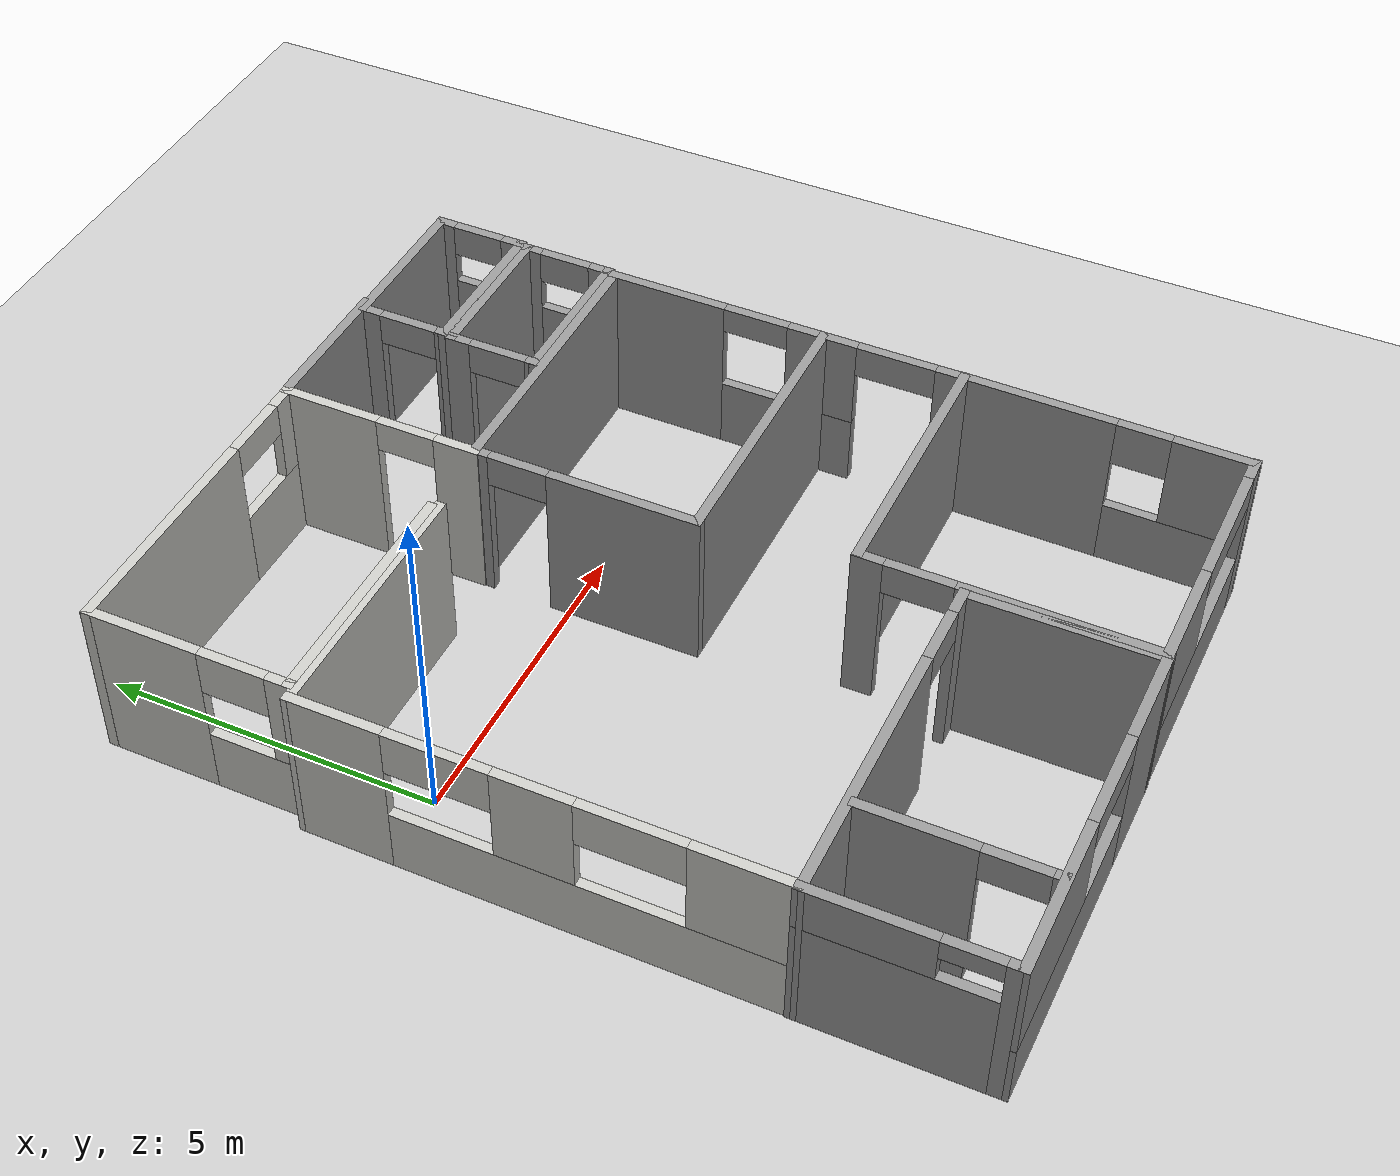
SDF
<sdf version="1.6">
 <world name="default">
  <light name="sun" type="directional">
   <pose>0 0 10 0 -0 0</pose>
   <diffuse>0.8 0.8 0.8 1</diffuse>
   <specular>0.2 0.2 0.2 1</specular>
   <attenuation>
    <range>1000</range>
    <constant>0.9</constant>
    <linear>0.01</linear>
    <quadratic>0.001</quadratic>
   </attenuation>
   <direction>-0.5 0.1 -0.9</direction>
  </light>
  <model name="ground_plane">
   <static>1</static>
   <link name="link">
    <collision name="collision">
     <geometry><plane><normal>0 0 1</normal><size>100 100</size></plane></geometry>
     <surface>
      <contact><collide_bitmask>65535</collide_bitmask></contact>
      <friction><ode><mu>100</mu><mu2>50</mu2></ode></friction>
     </surface>
    </collision>
    <visual name="visual">
     <cast_shadows>0</cast_shadows>
     <geometry><plane><normal>0 0 1</normal><size>100 100</size></plane></geometry>
     <material>
      <script><uri>file://media/materials/scripts/gazebo.material</uri><name>Gazebo/Grey</name></script>
     </material>
    </visual>
   </link>
  </model>
  <gravity>0 0 -9.8</gravity>
  <magnetic_field>6e-06 2.3e-05 -4.2e-05</magnetic_field>
  <atmosphere type="adiabatic"/>
  <physics name="default_physics" default="0" type="ode">
   <max_step_size>0.001</max_step_size>
   <real_time_factor>1</real_time_factor>
   <real_time_update_rate>1000</real_time_update_rate>
  </physics>
  <scene><ambient>0.4 0.4 0.4 1</ambient><background>0.7 0.7 0.7 1</background><shadows>1</shadows></scene>
  <audio><device>default</device></audio>
  <spherical_coordinates>
   <surface_model>EARTH_WGS84</surface_model>
   <latitude_deg>0</latitude_deg>
   <longitude_deg>0</longitude_deg>
   <elevation>0</elevation>
   <heading_deg>0</heading_deg>
  </spherical_coordinates>
  <model name="room1">
   <pose>6.17427 -1.26115 0 0 -0 0</pose>
   <link name="Wall_0">
    <collision name="Wall_0_Collision">
     <geometry><box><size>4.5 0.15 2.5</size></box></geometry>
     <pose>0 0 1.25 0 -0 0</pose>
    </collision>
    <visual name="Wall_0_Visual">
     <pose>0 0 1.25 0 -0 0</pose>
     <geometry><box><size>4.5 0.15 2.5</size></box></geometry>
     <material>
      <script><uri>file://media/materials/scripts/gazebo.material</uri><name>Gazebo/Grey</name></script>
      <ambient>1 1 1 1</ambient>
     </material>
     <meta><layer>0</layer></meta>
    </visual>
    <pose>0 2.675 0 0 -0 0</pose>
   </link>
   <link name="Wall_3">
    <pose>2.175 0 0 0 -0 -1.5708</pose>
    <visual name="Wall_3_Visual_0">
     <pose>-1.80904 0 1.25 0 -0 0</pose>
     <geometry><box><size>1.88193 0.15 2.5</size></box></geometry>
     <material>
      <script><uri>file://media/materials/scripts/gazebo.material</uri><name>Gazebo/Grey</name></script>
      <ambient>1 1 1 1</ambient>
     </material>
     <meta><layer>0</layer></meta>
    </visual>
    <collision name="Wall_3_Collision_0">
     <geometry><box><size>1.88193 0.15 2.5</size></box></geometry>
     <pose>-1.80904 0 1.25 0 -0 0</pose>
    </collision>
    <visual name="Wall_3_Visual_1">
     <pose>2.58157 0 1.25 0 -0 0</pose>
     <geometry><box><size>0.336859 0.15 2.5</size></box></geometry>
     <material>
      <script><uri>file://media/materials/scripts/gazebo.material</uri><name>Gazebo/Grey</name></script>
      <ambient>1 1 1 1</ambient>
     </material>
     <meta><layer>0</layer></meta>
    </visual>
    <collision name="Wall_3_Collision_1">
     <geometry><box><size>0.336859 0.15 2.5</size></box></geometry>
     <pose>2.58157 0 1.25 0 -0 0</pose>
    </collision>
    <visual name="Wall_3_Visual_2">
     <pose>0.172533 0 0.55 0 -0 0</pose>
     <geometry><box><size>2.08122 0.15 1.1</size></box></geometry>
     <material>
      <script><uri>file://media/materials/scripts/gazebo.material</uri><name>Gazebo/Grey</name></script>
      <ambient>1 1 1 1</ambient>
     </material>
     <meta><layer>0</layer></meta>
    </visual>
    <collision name="Wall_3_Collision_2">
     <geometry><box><size>2.08122 0.15 1.1</size></box></geometry>
     <pose>0.172533 0 0.55 0 -0 0</pose>
    </collision>
    <visual name="Wall_3_Visual_3">
     <pose>0.672533 0 1.8 0 -0 0</pose>
     <geometry><box><size>1.08122 0.15 1.4</size></box></geometry>
     <material>
      <script><uri>file://media/materials/scripts/gazebo.material</uri><name>Gazebo/Grey</name></script>
      <ambient>1 1 1 1</ambient>
     </material>
     <meta><layer>0</layer></meta>
    </visual>
    <collision name="Wall_3_Collision_3">
     <geometry><box><size>1.08122 0.15 1.4</size></box></geometry>
     <pose>0.672533 0 1.8 0 -0 0</pose>
    </collision>
    <visual name="Wall_3_Visual_4">
     <pose>1.81314 0 2.25 0 -0 0</pose>
     <geometry><box><size>1.2 0.15 0.5</size></box></geometry>
     <material>
      <script><uri>file://media/materials/scripts/gazebo.material</uri><name>Gazebo/Grey</name></script>
      <ambient>1 1 1 1</ambient>
     </material>
     <meta><layer>0</layer></meta>
    </visual>
    <collision name="Wall_3_Collision_4">
     <geometry><box><size>1.2 0.15 0.5</size></box></geometry>
     <pose>1.81314 0 2.25 0 -0 0</pose>
    </collision>
    <visual name="Wall_3_Visual_5">
     <pose>-0.368075 0 2.3 0 -0 0</pose>
     <geometry><box><size>1 0.15 0.4</size></box></geometry>
     <material>
      <script><uri>file://media/materials/scripts/gazebo.material</uri><name>Gazebo/Grey</name></script>
      <ambient>1 1 1 1</ambient>
     </material>
     <meta><layer>0</layer></meta>
    </visual>
    <collision name="Wall_3_Collision_5">
     <geometry><box><size>1 0.15 0.4</size></box></geometry>
     <pose>-0.368075 0 2.3 0 -0 0</pose>
    </collision>
   </link>
   <link name="Wall_5">
    <pose>-2.175 1 0 0 -0 -1.5708</pose>
    <visual name="Wall_5_Visual_0">
     <pose>-1.60199 0 1.25 0 -0 0</pose>
     <geometry><box><size>0.296013 0.15 2.5</size></box></geometry>
     <material>
      <script><uri>file://media/materials/scripts/gazebo.material</uri><name>Gazebo/Grey</name></script>
      <ambient>1 1 1 1</ambient>
     </material>
     <meta><layer>0</layer></meta>
    </visual>
    <collision name="Wall_5_Collision_0">
     <geometry><box><size>0.296013 0.15 2.5</size></box></geometry>
     <pose>-1.60199 0 1.25 0 -0 0</pose>
    </collision>
    <visual name="Wall_5_Visual_1">
     <pose>0.598006 0 1.25 0 -0 0</pose>
     <geometry><box><size>2.30399 0.15 2.5</size></box></geometry>
     <material>
      <script><uri>file://media/materials/scripts/gazebo.material</uri><name>Gazebo/Grey</name></script>
      <ambient>1 1 1 1</ambient>
     </material>
     <meta><layer>0</layer></meta>
    </visual>
    <collision name="Wall_5_Collision_1">
     <geometry><box><size>2.30399 0.15 2.5</size></box></geometry>
     <pose>0.598006 0 1.25 0 -0 0</pose>
    </collision>
    <visual name="Wall_5_Visual_2">
     <pose>-1.00399 0 2.25 0 -0 0</pose>
     <geometry><box><size>0.9 0.15 0.5</size></box></geometry>
     <material>
      <script><uri>file://media/materials/scripts/gazebo.material</uri><name>Gazebo/Grey</name></script>
      <ambient>1 1 1 1</ambient>
     </material>
     <meta><layer>0</layer></meta>
    </visual>
    <collision name="Wall_5_Collision_2">
     <geometry><box><size>0.9 0.15 0.5</size></box></geometry>
     <pose>-1.00399 0 2.25 0 -0 0</pose>
    </collision>
   </link>
   <link name="Wall_6">
    <collision name="Wall_6_Collision">
     <geometry><box><size>4.5 0.15 2.5</size></box></geometry>
     <pose>0 0 1.25 0 -0 0</pose>
    </collision>
    <visual name="Wall_6_Visual">
     <pose>0 0 1.25 0 -0 0</pose>
     <geometry><box><size>4.5 0.15 2.5</size></box></geometry>
     <material>
      <script><uri>file://media/materials/scripts/gazebo.material</uri><name>Gazebo/Grey</name></script>
      <ambient>1 1 1 1</ambient>
     </material>
     <meta><layer>0</layer></meta>
    </visual>
    <pose>0 -0.675 0 0 -0 0</pose>
   </link>
   <static>1</static>
  </model>
  <model name="bedroom">
   <pose>6.34354 -6.19614 0 0 -0 0</pose>
   <link name="Wall_0">
    <collision name="Wall_0_Collision">
     <geometry><box><size>4.12745 0.15 2.5</size></box></geometry>
     <pose>0 0 1.25 0 -0 0</pose>
    </collision>
    <visual name="Wall_0_Visual">
     <pose>0 0 1.25 0 -0 0</pose>
     <geometry><box><size>4.12745 0.15 2.5</size></box></geometry>
     <material>
      <script><uri>file://media/materials/scripts/gazebo.material</uri><name>Gazebo/Grey</name></script>
      <ambient>1 1 1 1</ambient>
     </material>
     <meta><layer>0</layer></meta>
    </visual>
    <pose>0.010813 2.10896 0 0 -0 0.000601</pose>
   </link>
   <link name="Wall_1">
    <pose>1.99168 0.001047 0 0 -0 -1.58072</pose>
    <visual name="Wall_1_Visual_0">
     <pose>-1.01455 0 1.25 0 -0 0</pose>
     <geometry><box><size>2.33921 0.15 2.5</size></box></geometry>
     <material>
      <script><uri>file://media/materials/scripts/gazebo.material</uri><name>Gazebo/Grey</name></script>
      <ambient>1 1 1 1</ambient>
     </material>
     <meta><layer>0</layer></meta>
    </visual>
    <collision name="Wall_1_Collision_0">
     <geometry><box><size>2.33921 0.15 2.5</size></box></geometry>
     <pose>-1.01455 0 1.25 0 -0 0</pose>
    </collision>
    <visual name="Wall_1_Visual_1">
     <pose>1.1696 0 0.5 0 -0 0</pose>
     <geometry><box><size>2.0291 0.15 1</size></box></geometry>
     <material>
      <script><uri>file://media/materials/scripts/gazebo.material</uri><name>Gazebo/Grey</name></script>
      <ambient>1 1 1 1</ambient>
     </material>
     <meta><layer>0</layer></meta>
    </visual>
    <collision name="Wall_1_Collision_1">
     <geometry><box><size>2.0291 0.15 1</size></box></geometry>
     <pose>1.1696 0 0.5 0 -0 0</pose>
    </collision>
    <visual name="Wall_1_Visual_2">
     <pose>1.5696 0 1.75 0 -0 0</pose>
     <geometry><box><size>1.2291 0.15 1.5</size></box></geometry>
     <material>
      <script><uri>file://media/materials/scripts/gazebo.material</uri><name>Gazebo/Grey</name></script>
      <ambient>1 1 1 1</ambient>
     </material>
     <meta><layer>0</layer></meta>
    </visual>
    <collision name="Wall_1_Collision_2">
     <geometry><box><size>1.2291 0.15 1.5</size></box></geometry>
     <pose>1.5696 0 1.75 0 -0 0</pose>
    </collision>
    <visual name="Wall_1_Visual_3">
     <pose>0.555055 0 2.15 0 -0 0</pose>
     <geometry><box><size>0.8 0.15 0.7</size></box></geometry>
     <material>
      <script><uri>file://media/materials/scripts/gazebo.material</uri><name>Gazebo/Grey</name></script>
      <ambient>1 1 1 1</ambient>
     </material>
     <meta><layer>0</layer></meta>
    </visual>
    <collision name="Wall_1_Collision_3">
     <geometry><box><size>0.8 0.15 0.7</size></box></geometry>
     <pose>0.555055 0 2.15 0 -0 0</pose>
    </collision>
   </link>
   <link name="Wall_2">
    <pose>-0.008032 -2.10925 0 0 -0 -3.14099</pose>
    <visual name="Wall_2_Visual_0">
     <pose>-1.85987 0 1.25 0 -0 0</pose>
     <geometry><box><size>0.413971 0.15 2.5</size></box></geometry>
     <material>
      <script><uri>file://media/materials/scripts/gazebo.material</uri><name>Gazebo/Grey</name></script>
      <ambient>1 1 1 1</ambient>
     </material>
     <meta><layer>0</layer></meta>
    </visual>
    <collision name="Wall_2_Collision_0">
     <geometry><box><size>0.413971 0.15 2.5</size></box></geometry>
     <pose>-1.85987 0 1.25 0 -0 0</pose>
    </collision>
    <visual name="Wall_2_Visual_1">
     <pose>0.206985 0 0.5 0 -0 0</pose>
     <geometry><box><size>3.71974 0.15 1</size></box></geometry>
     <material>
      <script><uri>file://media/materials/scripts/gazebo.material</uri><name>Gazebo/Grey</name></script>
      <ambient>1 1 1 1</ambient>
     </material>
     <meta><layer>0</layer></meta>
    </visual>
    <collision name="Wall_2_Collision_1">
     <geometry><box><size>3.71974 0.15 1</size></box></geometry>
     <pose>0.206985 0 0.5 0 -0 0</pose>
    </collision>
    <visual name="Wall_2_Visual_2">
     <pose>1.20698 0 1.75 0 -0 0</pose>
     <geometry><box><size>1.71974 0.15 1.5</size></box></geometry>
     <material>
      <script><uri>file://media/materials/scripts/gazebo.material</uri><name>Gazebo/Grey</name></script>
      <ambient>1 1 1 1</ambient>
     </material>
     <meta><layer>0</layer></meta>
    </visual>
    <collision name="Wall_2_Collision_2">
     <geometry><box><size>1.71974 0.15 1.5</size></box></geometry>
     <pose>1.20698 0 1.75 0 -0 0</pose>
    </collision>
    <visual name="Wall_2_Visual_3">
     <pose>-0.652887 0 2.25 0 -0 0</pose>
     <geometry><box><size>2 0.15 0.5</size></box></geometry>
     <material>
      <script><uri>file://media/materials/scripts/gazebo.material</uri><name>Gazebo/Grey</name></script>
      <ambient>1 1 1 1</ambient>
     </material>
     <meta><layer>0</layer></meta>
    </visual>
    <collision name="Wall_2_Collision_3">
     <geometry><box><size>2 0.15 0.5</size></box></geometry>
     <pose>-0.652887 0 2.25 0 -0 0</pose>
    </collision>
   </link>
   <link name="Wall_3">
    <pose>-2.00198 -0.001343 0 0 -0 1.56559</pose>
    <visual name="Wall_3_Visual_0">
     <pose>-0.724128 0 1.25 0 -0 0</pose>
     <geometry><box><size>2.92001 0.15 2.5</size></box></geometry>
     <material>
      <script><uri>file://media/materials/scripts/gazebo.material</uri><name>Gazebo/Grey</name></script>
      <ambient>1 1 1 1</ambient>
     </material>
     <meta><layer>0</layer></meta>
    </visual>
    <collision name="Wall_3_Collision_0">
     <geometry><box><size>2.92001 0.15 2.5</size></box></geometry>
     <pose>-0.724128 0 1.25 0 -0 0</pose>
    </collision>
    <visual name="Wall_3_Visual_1">
     <pose>1.96001 0 1.25 0 -0 0</pose>
     <geometry><box><size>0.448255 0.15 2.5</size></box></geometry>
     <material>
      <script><uri>file://media/materials/scripts/gazebo.material</uri><name>Gazebo/Grey</name></script>
      <ambient>1 1 1 1</ambient>
     </material>
     <meta><layer>0</layer></meta>
    </visual>
    <collision name="Wall_3_Collision_1">
     <geometry><box><size>0.448255 0.15 2.5</size></box></geometry>
     <pose>1.96001 0 1.25 0 -0 0</pose>
    </collision>
    <visual name="Wall_3_Visual_2">
     <pose>1.23588 0 2.25 0 -0 0</pose>
     <geometry><box><size>1 0.15 0.5</size></box></geometry>
     <material>
      <script><uri>file://media/materials/scripts/gazebo.material</uri><name>Gazebo/Grey</name></script>
      <ambient>1 1 1 1</ambient>
     </material>
     <meta><layer>0</layer></meta>
    </visual>
    <collision name="Wall_3_Collision_2">
     <geometry><box><size>1 0.15 0.5</size></box></geometry>
     <pose>1.23588 0 2.25 0 -0 0</pose>
    </collision>
   </link>
   <static>1</static>
  </model>
  <model name="guestroom">
   <pose>1.59414 -6.94596 0 0 -0 0</pose>
   <link name="Wall_10">
    <pose>-1.23059 -0.025079 0 0 -0 -1.5708</pose>
    <visual name="Wall_10_Visual_0">
     <pose>-0.541735 0 1.25 0 -0 0</pose>
     <geometry><box><size>1.66653 0.15 2.5</size></box></geometry>
     <material>
      <script><uri>file://media/materials/scripts/gazebo.material</uri><name>Gazebo/Grey</name></script>
      <ambient>1 1 1 1</ambient>
     </material>
     <meta><layer>0</layer></meta>
    </visual>
    <collision name="Wall_10_Collision_0">
     <geometry><box><size>1.66653 0.15 2.5</size></box></geometry>
     <pose>-0.541735 0 1.25 0 -0 0</pose>
    </collision>
    <visual name="Wall_10_Visual_1">
     <pose>1.28327 0 1.25 0 -0 0</pose>
     <geometry><box><size>0.18347 0.15 2.5</size></box></geometry>
     <material>
      <script><uri>file://media/materials/scripts/gazebo.material</uri><name>Gazebo/Grey</name></script>
      <ambient>1 1 1 1</ambient>
     </material>
     <meta><layer>0</layer></meta>
    </visual>
    <collision name="Wall_10_Collision_1">
     <geometry><box><size>0.18347 0.15 2.5</size></box></geometry>
     <pose>1.28327 0 1.25 0 -0 0</pose>
    </collision>
    <visual name="Wall_10_Visual_2">
     <pose>0.74153 0 2.25 0 -0 0</pose>
     <geometry><box><size>0.9 0.15 0.5</size></box></geometry>
     <material>
      <script><uri>file://media/materials/scripts/gazebo.material</uri><name>Gazebo/Grey</name></script>
      <ambient>1 1 1 1</ambient>
     </material>
     <meta><layer>0</layer></meta>
    </visual>
    <collision name="Wall_10_Collision_2">
     <geometry><box><size>0.9 0.15 0.5</size></box></geometry>
     <pose>0.74153 0 2.25 0 -0 0</pose>
    </collision>
   </link>
   <link name="Wall_5">
    <pose>0.005038 -1.36819 0 0 -0 3.13972</pose>
    <visual name="Wall_5_Visual_0">
     <pose>-1.97315 0 1.25 0 -0 0</pose>
     <geometry><box><size>1.52817 0.15 2.5</size></box></geometry>
     <material>
      <script><uri>file://media/materials/scripts/gazebo.material</uri><name>Gazebo/Grey</name></script>
      <ambient>1 1 1 1</ambient>
     </material>
     <meta><layer>0</layer></meta>
    </visual>
    <collision name="Wall_5_Collision_0">
     <geometry><box><size>1.52817 0.15 2.5</size></box></geometry>
     <pose>-1.97315 0 1.25 0 -0 0</pose>
    </collision>
    <visual name="Wall_5_Visual_1">
     <pose>0.764084 0 0.5 0 -0 0</pose>
     <geometry><box><size>3.94631 0.15 1</size></box></geometry>
     <material>
      <script><uri>file://media/materials/scripts/gazebo.material</uri><name>Gazebo/Grey</name></script>
      <ambient>1 1 1 1</ambient>
     </material>
     <meta><layer>0</layer></meta>
    </visual>
    <collision name="Wall_5_Collision_1">
     <geometry><box><size>3.94631 0.15 1</size></box></geometry>
     <pose>0.764084 0 0.5 0 -0 0</pose>
    </collision>
    <visual name="Wall_5_Visual_2">
     <pose>1.51408 0 1.75 0 -0 0</pose>
     <geometry><box><size>2.44631 0.15 1.5</size></box></geometry>
     <material>
      <script><uri>file://media/materials/scripts/gazebo.material</uri><name>Gazebo/Grey</name></script>
      <ambient>1 1 1 1</ambient>
     </material>
     <meta><layer>0</layer></meta>
    </visual>
    <collision name="Wall_5_Collision_2">
     <geometry><box><size>2.44631 0.15 1.5</size></box></geometry>
     <pose>1.51408 0 1.75 0 -0 0</pose>
    </collision>
    <visual name="Wall_5_Visual_3">
     <pose>-0.45907 0 2.25 0 -0 0</pose>
     <geometry><box><size>1.5 0.15 0.5</size></box></geometry>
     <material>
      <script><uri>file://media/materials/scripts/gazebo.material</uri><name>Gazebo/Grey</name></script>
      <ambient>1 1 1 1</ambient>
     </material>
     <meta><layer>0</layer></meta>
    </visual>
    <collision name="Wall_5_Collision_3">
     <geometry><box><size>1.5 0.15 0.5</size></box></geometry>
     <pose>-0.45907 0 2.25 0 -0 0</pose>
    </collision>
   </link>
   <link name="Wall_6">
    <pose>-2.66217 0.009943 0 0 -0 1.57444</pose>
    <visual name="Wall_6_Visual_0">
     <pose>-1.3038 0 1.25 0 -0 0</pose>
     <geometry><box><size>0.268853 0.15 2.5</size></box></geometry>
     <material>
      <script><uri>file://media/materials/scripts/gazebo.material</uri><name>Gazebo/Grey</name></script>
      <ambient>1 1 1 1</ambient>
     </material>
     <meta><layer>0</layer></meta>
    </visual>
    <collision name="Wall_6_Collision_0">
     <geometry><box><size>0.268853 0.15 2.5</size></box></geometry>
     <pose>-1.3038 0 1.25 0 -0 0</pose>
    </collision>
    <visual name="Wall_6_Visual_1">
     <pose>0.134426 0 0.9 0 -0 0</pose>
     <geometry><box><size>2.60761 0.15 1.8</size></box></geometry>
     <material>
      <script><uri>file://media/materials/scripts/gazebo.material</uri><name>Gazebo/Grey</name></script>
      <ambient>1 1 1 1</ambient>
     </material>
     <meta><layer>0</layer></meta>
    </visual>
    <collision name="Wall_6_Collision_1">
     <geometry><box><size>2.60761 0.15 1.8</size></box></geometry>
     <pose>0.134426 0 0.9 0 -0 0</pose>
    </collision>
    <visual name="Wall_6_Visual_2">
     <pose>0.534426 0 2.15 0 -0 0</pose>
     <geometry><box><size>1.80761 0.15 0.7</size></box></geometry>
     <material>
      <script><uri>file://media/materials/scripts/gazebo.material</uri><name>Gazebo/Grey</name></script>
      <ambient>1 1 1 1</ambient>
     </material>
     <meta><layer>0</layer></meta>
    </visual>
    <collision name="Wall_6_Collision_2">
     <geometry><box><size>1.80761 0.15 0.7</size></box></geometry>
     <pose>0.534426 0 2.15 0 -0 0</pose>
    </collision>
    <visual name="Wall_6_Visual_3">
     <pose>-0.769378 0 2.35 0 -0 0</pose>
     <geometry><box><size>0.8 0.15 0.3</size></box></geometry>
     <material>
      <script><uri>file://media/materials/scripts/gazebo.material</uri><name>Gazebo/Grey</name></script>
      <ambient>1 1 1 1</ambient>
     </material>
     <meta><layer>0</layer></meta>
    </visual>
    <collision name="Wall_6_Collision_3">
     <geometry><box><size>0.8 0.15 0.3</size></box></geometry>
     <pose>-0.769378 0 2.35 0 -0 0</pose>
    </collision>
   </link>
   <link name="Wall_7">
    <pose>-0.004905 1.35825 0 0 -0 -0.001868</pose>
    <visual name="Wall_7_Visual_0">
     <pose>-0.676316 0 1.25 0 -0 0</pose>
     <geometry><box><size>4.12184 0.15 2.5</size></box></geometry>
     <material>
      <script><uri>file://media/materials/scripts/gazebo.material</uri><name>Gazebo/Grey</name></script>
      <ambient>1 1 1 1</ambient>
     </material>
     <meta><layer>0</layer></meta>
    </visual>
    <collision name="Wall_7_Collision_0">
     <geometry><box><size>4.12184 0.15 2.5</size></box></geometry>
     <pose>-0.676316 0 1.25 0 -0 0</pose>
    </collision>
    <visual name="Wall_7_Visual_1">
     <pose>2.51092 0 1.25 0 -0 0</pose>
     <geometry><box><size>0.452632 0.15 2.5</size></box></geometry>
     <material>
      <script><uri>file://media/materials/scripts/gazebo.material</uri><name>Gazebo/Grey</name></script>
      <ambient>1 1 1 1</ambient>
     </material>
     <meta><layer>0</layer></meta>
    </visual>
    <collision name="Wall_7_Collision_1">
     <geometry><box><size>0.452632 0.15 2.5</size></box></geometry>
     <pose>2.51092 0 1.25 0 -0 0</pose>
    </collision>
    <visual name="Wall_7_Visual_2">
     <pose>1.83461 0 2.25 0 -0 0</pose>
     <geometry><box><size>0.9 0.15 0.5</size></box></geometry>
     <material>
      <script><uri>file://media/materials/scripts/gazebo.material</uri><name>Gazebo/Grey</name></script>
      <ambient>1 1 1 1</ambient>
     </material>
     <meta><layer>0</layer></meta>
    </visual>
    <collision name="Wall_7_Collision_2">
     <geometry><box><size>0.9 0.15 0.5</size></box></geometry>
     <pose>1.83461 0 2.25 0 -0 0</pose>
    </collision>
   </link>
   <link name="Wall_8">
    <collision name="Wall_8_Collision">
     <geometry><box><size>2.87646 0.15 2.5</size></box></geometry>
     <pose>0 0 1.25 0 -0 0</pose>
    </collision>
    <visual name="Wall_8_Visual">
     <pose>0 0 1.25 0 -0 0</pose>
     <geometry><box><size>2.87646 0.15 2.5</size></box></geometry>
     <material>
      <script><uri>file://media/materials/scripts/gazebo.material</uri><name>Gazebo/Grey</name></script>
      <ambient>1 1 1 1</ambient>
     </material>
     <meta><layer>0</layer></meta>
    </visual>
    <pose>2.65236 -0.009944 0 0 -0 -1.56715</pose>
   </link>
   <static>1</static>
  </model>
  <model name="hall">
   <pose>0.868535 -2.12004 0 0 -0 0</pose>
   <link name="Wall_0">
    <collision name="Wall_0_Collision">
     <geometry><box><size>4.00005 0.15 2.5</size></box></geometry>
     <pose>0 0 1.25 0 -0 0</pose>
    </collision>
    <visual name="Wall_0_Visual">
     <pose>0 0 1.25 0 -0 0</pose>
     <geometry><box><size>4.00005 0.15 2.5</size></box></geometry>
     <material>
      <script><uri>file://media/materials/scripts/gazebo.material</uri><name>Gazebo/CeilingTiled</name></script>
      <ambient>0.921569 0.807843 0.615686 1</ambient>
     </material>
     <meta><layer>0</layer></meta>
    </visual>
    <pose>0 3.4249 0 0 -0 -3.13899</pose>
   </link>
   <link name="Wall_1">
    <pose>-1.925 -0.005097 0 0 -0 -1.5708</pose>
    <visual name="Wall_1_Visual_0">
     <pose>-2.7975 0 1.25 0 -0 0</pose>
     <geometry><box><size>1.405 0.15 2.5</size></box></geometry>
     <material>
      <script><uri>file://media/materials/scripts/gazebo.material</uri><name>Gazebo/CeilingTiled</name></script>
      <ambient>0.921569 0.807843 0.615686 1</ambient>
     </material>
     <meta><layer>0</layer></meta>
    </visual>
    <collision name="Wall_1_Collision_0">
     <geometry><box><size>1.405 0.15 2.5</size></box></geometry>
     <pose>-2.7975 0 1.25 0 -0 0</pose>
    </collision>
    <visual name="Wall_1_Visual_1">
     <pose>0.7025 0 0.5 0 -0 0</pose>
     <geometry><box><size>5.595 0.15 1</size></box></geometry>
     <material>
      <script><uri>file://media/materials/scripts/gazebo.material</uri><name>Gazebo/CeilingTiled</name></script>
      <ambient>0.921569 0.807843 0.615686 1</ambient>
     </material>
     <meta><layer>0</layer></meta>
    </visual>
    <collision name="Wall_1_Collision_1">
     <geometry><box><size>5.595 0.15 1</size></box></geometry>
     <pose>0.7025 0 0.5 0 -0 0</pose>
    </collision>
    <visual name="Wall_1_Visual_2">
     <pose>-0.03 0 1.75 0 -0 0</pose>
     <geometry><box><size>1.13 0.15 1.5</size></box></geometry>
     <material>
      <script><uri>file://media/materials/scripts/gazebo.material</uri><name>Gazebo/CeilingTiled</name></script>
      <ambient>0.921569 0.807843 0.615686 1</ambient>
     </material>
     <meta><layer>0</layer></meta>
    </visual>
    <collision name="Wall_1_Collision_2">
     <geometry><box><size>1.13 0.15 1.5</size></box></geometry>
     <pose>-0.03 0 1.75 0 -0 0</pose>
    </collision>
    <visual name="Wall_1_Visual_3">
     <pose>2.7675 0 1.75 0 -0 0</pose>
     <geometry><box><size>1.465 0.15 1.5</size></box></geometry>
     <material>
      <script><uri>file://media/materials/scripts/gazebo.material</uri><name>Gazebo/CeilingTiled</name></script>
      <ambient>0.921569 0.807843 0.615686 1</ambient>
     </material>
     <meta><layer>0</layer></meta>
    </visual>
    <collision name="Wall_1_Collision_3">
     <geometry><box><size>1.465 0.15 1.5</size></box></geometry>
     <pose>2.7675 0 1.75 0 -0 0</pose>
    </collision>
    <visual name="Wall_1_Visual_4">
     <pose>-1.345 0 2.15 0 -0 0</pose>
     <geometry><box><size>1.5 0.15 0.7</size></box></geometry>
     <material>
      <script><uri>file://media/materials/scripts/gazebo.material</uri><name>Gazebo/CeilingTiled</name></script>
      <ambient>0.921569 0.807843 0.615686 1</ambient>
     </material>
     <meta><layer>0</layer></meta>
    </visual>
    <collision name="Wall_1_Collision_4">
     <geometry><box><size>1.5 0.15 0.7</size></box></geometry>
     <pose>-1.345 0 2.15 0 -0 0</pose>
    </collision>
    <visual name="Wall_1_Visual_5">
     <pose>1.285 0 2.15 0 -0 0</pose>
     <geometry><box><size>1.5 0.15 0.7</size></box></geometry>
     <material>
      <script><uri>file://media/materials/scripts/gazebo.material</uri><name>Gazebo/CeilingTiled</name></script>
      <ambient>0.921569 0.807843 0.615686 1</ambient>
     </material>
     <meta><layer>0</layer></meta>
    </visual>
    <collision name="Wall_1_Collision_5">
     <geometry><box><size>1.5 0.15 0.7</size></box></geometry>
     <pose>1.285 0 2.15 0 -0 0</pose>
    </collision>
   </link>
   <static>1</static>
  </model>
  <model name="kitchen">
   <pose>1.56187 2.90547 0 0 -0 0</pose>
   <link name="Wall_16">
    <pose>-0 1.498 0 0 -0 0</pose>
    <visual name="Wall_16_Visual_0">
     <pose>-0.727552 0 1.25 0 -0 0</pose>
     <geometry><box><size>3.54489 0.15 2.5</size></box></geometry>
     <material>
      <script><uri>file://media/materials/scripts/gazebo.material</uri><name>Gazebo/CeilingTiled</name></script>
      <ambient>0.921569 0.807843 0.615686 1</ambient>
     </material>
     <meta><layer>0</layer></meta>
    </visual>
    <collision name="Wall_16_Collision_0">
     <geometry><box><size>3.54489 0.15 2.5</size></box></geometry>
     <pose>-0.727552 0 1.25 0 -0 0</pose>
    </collision>
    <visual name="Wall_16_Visual_1">
     <pose>1.77245 0 0.6 0 -0 0</pose>
     <geometry><box><size>1.45511 0.15 1.2</size></box></geometry>
     <material>
      <script><uri>file://media/materials/scripts/gazebo.material</uri><name>Gazebo/CeilingTiled</name></script>
      <ambient>0.921569 0.807843 0.615686 1</ambient>
     </material>
     <meta><layer>0</layer></meta>
    </visual>
    <collision name="Wall_16_Collision_1">
     <geometry><box><size>1.45511 0.15 1.2</size></box></geometry>
     <pose>1.77245 0 0.6 0 -0 0</pose>
    </collision>
    <visual name="Wall_16_Visual_2">
     <pose>2.27245 0 1.85 0 -0 0</pose>
     <geometry><box><size>0.455105 0.15 1.3</size></box></geometry>
     <material>
      <script><uri>file://media/materials/scripts/gazebo.material</uri><name>Gazebo/CeilingTiled</name></script>
      <ambient>0.921569 0.807843 0.615686 1</ambient>
     </material>
     <meta><layer>0</layer></meta>
    </visual>
    <collision name="Wall_16_Collision_2">
     <geometry><box><size>0.455105 0.15 1.3</size></box></geometry>
     <pose>2.27245 0 1.85 0 -0 0</pose>
    </collision>
    <visual name="Wall_16_Visual_3">
     <pose>1.54489 0 2.25 0 -0 0</pose>
     <geometry><box><size>1 0.15 0.5</size></box></geometry>
     <material>
      <script><uri>file://media/materials/scripts/gazebo.material</uri><name>Gazebo/CeilingTiled</name></script>
      <ambient>0.921569 0.807843 0.615686 1</ambient>
     </material>
     <meta><layer>0</layer></meta>
    </visual>
    <collision name="Wall_16_Collision_3">
     <geometry><box><size>1 0.15 0.5</size></box></geometry>
     <pose>1.54489 0 2.25 0 -0 0</pose>
    </collision>
   </link>
   <link name="Wall_17">
    <pose>2.425 0 0 0 -0 -1.5708</pose>
    <visual name="Wall_17_Visual_0">
     <pose>-0.798451 0 1.25 0 -0 0</pose>
     <geometry><box><size>1.54971 0.15 2.5</size></box></geometry>
     <material>
      <script><uri>file://media/materials/scripts/gazebo.material</uri><name>Gazebo/CeilingTiled</name></script>
      <ambient>1 0.764706 0.305882 1</ambient>
     </material>
     <meta><layer>0</layer></meta>
    </visual>
    <collision name="Wall_17_Collision_0">
     <geometry><box><size>1.54971 0.15 2.5</size></box></geometry>
     <pose>-0.798451 0 1.25 0 -0 0</pose>
    </collision>
    <visual name="Wall_17_Visual_1">
     <pose>1.22486 0 1.25 0 -0 0</pose>
     <geometry><box><size>0.696901 0.15 2.5</size></box></geometry>
     <material>
      <script><uri>file://media/materials/scripts/gazebo.material</uri><name>Gazebo/CeilingTiled</name></script>
      <ambient>1 0.764706 0.305882 1</ambient>
     </material>
     <meta><layer>0</layer></meta>
    </visual>
    <collision name="Wall_17_Collision_1">
     <geometry><box><size>0.696901 0.15 2.5</size></box></geometry>
     <pose>1.22486 0 1.25 0 -0 0</pose>
    </collision>
    <visual name="Wall_17_Visual_2">
     <pose>0.426404 0 2.25 0 -0 0</pose>
     <geometry><box><size>0.9 0.15 0.5</size></box></geometry>
     <material>
      <script><uri>file://media/materials/scripts/gazebo.material</uri><name>Gazebo/CeilingTiled</name></script>
      <ambient>1 0.764706 0.305882 1</ambient>
     </material>
     <meta><layer>0</layer></meta>
    </visual>
    <collision name="Wall_17_Collision_2">
     <geometry><box><size>0.9 0.15 0.5</size></box></geometry>
     <pose>0.426404 0 2.25 0 -0 0</pose>
    </collision>
   </link>
   <link name="Wall_20">
    <pose>-2.425 0 0 0 -0 -1.5708</pose>
    <visual name="Wall_20_Visual_0">
     <pose>-0.702481 0 1.25 0 -0 0</pose>
     <geometry><box><size>1.74165 0.15 2.5</size></box></geometry>
     <material>
      <script><uri>file://media/materials/scripts/gazebo.material</uri><name>Gazebo/CeilingTiled</name></script>
      <ambient>0.921569 0.807843 0.615686 1</ambient>
     </material>
     <meta><layer>0</layer></meta>
    </visual>
    <collision name="Wall_20_Collision_0">
     <geometry><box><size>1.74165 0.15 2.5</size></box></geometry>
     <pose>-0.702481 0 1.25 0 -0 0</pose>
    </collision>
    <visual name="Wall_20_Visual_1">
     <pose>0.870825 0 0.5 0 -0 0</pose>
     <geometry><box><size>1.40496 0.15 1</size></box></geometry>
     <material>
      <script><uri>file://media/materials/scripts/gazebo.material</uri><name>Gazebo/CeilingTiled</name></script>
      <ambient>0.921569 0.807843 0.615686 1</ambient>
     </material>
     <meta><layer>0</layer></meta>
    </visual>
    <collision name="Wall_20_Collision_1">
     <geometry><box><size>1.40496 0.15 1</size></box></geometry>
     <pose>0.870825 0 0.5 0 -0 0</pose>
    </collision>
    <visual name="Wall_20_Visual_2">
     <pose>1.37082 0 1.75 0 -0 0</pose>
     <geometry><box><size>0.404962 0.15 1.5</size></box></geometry>
     <material>
      <script><uri>file://media/materials/scripts/gazebo.material</uri><name>Gazebo/CeilingTiled</name></script>
      <ambient>0.921569 0.807843 0.615686 1</ambient>
     </material>
     <meta><layer>0</layer></meta>
    </visual>
    <collision name="Wall_20_Collision_2">
     <geometry><box><size>0.404962 0.15 1.5</size></box></geometry>
     <pose>1.37082 0 1.75 0 -0 0</pose>
    </collision>
    <visual name="Wall_20_Visual_3">
     <pose>0.668344 0 2.15 0 -0 0</pose>
     <geometry><box><size>1 0.15 0.7</size></box></geometry>
     <material>
      <script><uri>file://media/materials/scripts/gazebo.material</uri><name>Gazebo/CeilingTiled</name></script>
      <ambient>0.921569 0.807843 0.615686 1</ambient>
     </material>
     <meta><layer>0</layer></meta>
    </visual>
    <collision name="Wall_20_Collision_3">
     <geometry><box><size>1 0.15 0.7</size></box></geometry>
     <pose>0.668344 0 2.15 0 -0 0</pose>
    </collision>
   </link>
   <link name="Wall_21">
    <collision name="Wall_21_Collision">
     <geometry><box><size>3.75 0.15 2.5</size></box></geometry>
     <pose>0 0 1.25 0 -0 0</pose>
    </collision>
    <visual name="Wall_21_Visual">
     <pose>0 0 1.25 0 -0 0</pose>
     <geometry><box><size>3.75 0.15 2.5</size></box></geometry>
     <material>
      <script><uri>file://media/materials/scripts/gazebo.material</uri><name>Gazebo/CeilingTiled</name></script>
      <ambient>0.921569 0.807843 0.615686 1</ambient>
     </material>
     <meta><layer>0</layer></meta>
    </visual>
    <pose>-0.625 -1.498 0 0 -0 0</pose>
   </link>
   <static>1</static>
  </model>
  <model name="wall">
   <pose>5.15322 4.41624 0 0 -0 0</pose>
   <link name="Wall_10">
    <collision name="Wall_10_Collision">
     <geometry><box><size>2.25 0.15 2.5</size></box></geometry>
     <pose>0 0 1.25 0 -0 0</pose>
    </collision>
    <visual name="Wall_10_Visual">
     <pose>0 0 1.25 0 -0 0</pose>
     <geometry><box><size>2.25 0.15 2.5</size></box></geometry>
     <material>
      <script><uri>file://media/materials/scripts/gazebo.material</uri><name>Gazebo/Grey</name></script>
      <ambient>1 1 1 1</ambient>
     </material>
     <meta><layer>0</layer></meta>
    </visual>
   </link>
   <static>1</static>
  </model>
  <model name="bathroom">
   <pose>7.20675 2.21393 0 0 -0 0</pose>
   <link name="Wall_3">
    <collision name="Wall_3_Collision">
     <geometry><box><size>2.5 0.15 2.5</size></box></geometry>
     <pose>0 0 1.25 0 -0 0</pose>
    </collision>
    <visual name="Wall_3_Visual">
     <pose>0 0 1.25 0 -0 0</pose>
     <geometry><box><size>2.5 0.15 2.5</size></box></geometry>
     <material>
      <script><uri>file://media/materials/scripts/gazebo.material</uri><name>Gazebo/Grey</name></script>
      <ambient>1 1 1 1</ambient>
     </material>
     <meta><layer>0</layer></meta>
    </visual>
    <pose>-0 0.675 0 0 -0 0</pose>
   </link>
   <link name="Wall_4">
    <pose>1.175 0 0 0 -0 -1.5708</pose>
    <visual name="Wall_4_Visual_0">
     <pose>-0.5875 0 1.25 0 -0 0</pose>
     <geometry><box><size>0.325 0.15 2.5</size></box></geometry>
     <material>
      <script><uri>file://media/materials/scripts/gazebo.material</uri><name>Gazebo/Grey</name></script>
      <ambient>1 1 1 1</ambient>
     </material>
     <meta><layer>0</layer></meta>
    </visual>
    <collision name="Wall_4_Collision_0">
     <geometry><box><size>0.325 0.15 2.5</size></box></geometry>
     <pose>-0.5875 0 1.25 0 -0 0</pose>
    </collision>
    <visual name="Wall_4_Visual_1">
     <pose>0.1625 0 0.75 0 -0 0</pose>
     <geometry><box><size>1.175 0.15 1.5</size></box></geometry>
     <material>
      <script><uri>file://media/materials/scripts/gazebo.material</uri><name>Gazebo/Grey</name></script>
      <ambient>1 1 1 1</ambient>
     </material>
     <meta><layer>0</layer></meta>
    </visual>
    <collision name="Wall_4_Collision_1">
     <geometry><box><size>1.175 0.15 1.5</size></box></geometry>
     <pose>0.1625 0 0.75 0 -0 0</pose>
    </collision>
    <visual name="Wall_4_Visual_2">
     <pose>0.5625 0 2 0 -0 0</pose>
     <geometry><box><size>0.375 0.15 1</size></box></geometry>
     <material>
      <script><uri>file://media/materials/scripts/gazebo.material</uri><name>Gazebo/Grey</name></script>
      <ambient>1 1 1 1</ambient>
     </material>
     <meta><layer>0</layer></meta>
    </visual>
    <collision name="Wall_4_Collision_2">
     <geometry><box><size>0.375 0.15 1</size></box></geometry>
     <pose>0.5625 0 2 0 -0 0</pose>
    </collision>
    <visual name="Wall_4_Visual_3">
     <pose>-0.025 0 2.25 0 -0 0</pose>
     <geometry><box><size>0.8 0.15 0.5</size></box></geometry>
     <material>
      <script><uri>file://media/materials/scripts/gazebo.material</uri><name>Gazebo/Grey</name></script>
      <ambient>1 1 1 1</ambient>
     </material>
     <meta><layer>0</layer></meta>
    </visual>
    <collision name="Wall_4_Collision_3">
     <geometry><box><size>0.8 0.15 0.5</size></box></geometry>
     <pose>-0.025 0 2.25 0 -0 0</pose>
    </collision>
   </link>
   <link name="Wall_5">
    <collision name="Wall_5_Collision">
     <geometry><box><size>2.5 0.15 2.5</size></box></geometry>
     <pose>0 0 1.25 0 -0 0</pose>
    </collision>
    <visual name="Wall_5_Visual">
     <pose>0 0 1.25 0 -0 0</pose>
     <geometry><box><size>2.5 0.15 2.5</size></box></geometry>
     <material>
      <script><uri>file://media/materials/scripts/gazebo.material</uri><name>Gazebo/Grey</name></script>
      <ambient>1 1 1 1</ambient>
     </material>
     <meta><layer>0</layer></meta>
    </visual>
    <pose>-0 -0.675 0 0 -0 3.14159</pose>
   </link>
   <link name="Wall_6">
    <pose>-1.175 0 0 0 -0 1.5708</pose>
    <visual name="Wall_6_Visual_0">
     <pose>-0.6425 0 1.25 0 -0 0</pose>
     <geometry><box><size>0.215 0.15 2.5</size></box></geometry>
     <material>
      <script><uri>file://media/materials/scripts/gazebo.material</uri><name>Gazebo/Grey</name></script>
      <ambient>1 1 1 1</ambient>
     </material>
     <meta><layer>0</layer></meta>
    </visual>
    <collision name="Wall_6_Collision_0">
     <geometry><box><size>0.215 0.15 2.5</size></box></geometry>
     <pose>-0.6425 0 1.25 0 -0 0</pose>
    </collision>
    <visual name="Wall_6_Visual_1">
     <pose>0.5575 0 1.25 0 -0 0</pose>
     <geometry><box><size>0.385 0.15 2.5</size></box></geometry>
     <material>
      <script><uri>file://media/materials/scripts/gazebo.material</uri><name>Gazebo/Grey</name></script>
      <ambient>1 1 1 1</ambient>
     </material>
     <meta><layer>0</layer></meta>
    </visual>
    <collision name="Wall_6_Collision_1">
     <geometry><box><size>0.385 0.15 2.5</size></box></geometry>
     <pose>0.5575 0 1.25 0 -0 0</pose>
    </collision>
    <visual name="Wall_6_Visual_2">
     <pose>-0.085 0 2.25 0 -0 0</pose>
     <geometry><box><size>0.9 0.15 0.5</size></box></geometry>
     <material>
      <script><uri>file://media/materials/scripts/gazebo.material</uri><name>Gazebo/Grey</name></script>
      <ambient>1 1 1 1</ambient>
     </material>
     <meta><layer>0</layer></meta>
    </visual>
    <collision name="Wall_6_Collision_2">
     <geometry><box><size>0.9 0.15 0.5</size></box></geometry>
     <pose>-0.085 0 2.25 0 -0 0</pose>
    </collision>
   </link>
   <static>1</static>
  </model>
  <model name="bathroom_0">
   <pose>7.24225 3.69995 0 0 -0 0</pose>
   <link name="Wall_3">
    <collision name="Wall_3_Collision">
     <geometry><box><size>2.5 0.15 2.5</size></box></geometry>
     <pose>0 0 1.25 0 -0 0</pose>
    </collision>
    <visual name="Wall_3_Visual">
     <pose>0 0 1.25 0 -0 0</pose>
     <geometry><box><size>2.5 0.15 2.5</size></box></geometry>
     <material>
      <script><uri>file://media/materials/scripts/gazebo.material</uri><name>Gazebo/Grey</name></script>
      <ambient>1 1 1 1</ambient>
     </material>
     <meta><layer>0</layer></meta>
    </visual>
    <pose>-0 0.675 0 0 -0 0</pose>
   </link>
   <link name="Wall_4">
    <pose>1.175 0 0 0 -0 -1.5708</pose>
    <visual name="Wall_4_Visual_0">
     <pose>-0.5875 0 1.25 0 -0 0</pose>
     <geometry><box><size>0.325 0.15 2.5</size></box></geometry>
     <material>
      <script><uri>file://media/materials/scripts/gazebo.material</uri><name>Gazebo/Grey</name></script>
      <ambient>1 1 1 1</ambient>
     </material>
     <meta><layer>0</layer></meta>
    </visual>
    <collision name="Wall_4_Collision_0">
     <geometry><box><size>0.325 0.15 2.5</size></box></geometry>
     <pose>-0.5875 0 1.25 0 -0 0</pose>
    </collision>
    <visual name="Wall_4_Visual_1">
     <pose>0.1625 0 0.75 0 -0 0</pose>
     <geometry><box><size>1.175 0.15 1.5</size></box></geometry>
     <material>
      <script><uri>file://media/materials/scripts/gazebo.material</uri><name>Gazebo/Grey</name></script>
      <ambient>1 1 1 1</ambient>
     </material>
     <meta><layer>0</layer></meta>
    </visual>
    <collision name="Wall_4_Collision_1">
     <geometry><box><size>1.175 0.15 1.5</size></box></geometry>
     <pose>0.1625 0 0.75 0 -0 0</pose>
    </collision>
    <visual name="Wall_4_Visual_2">
     <pose>0.5625 0 2 0 -0 0</pose>
     <geometry><box><size>0.375 0.15 1</size></box></geometry>
     <material>
      <script><uri>file://media/materials/scripts/gazebo.material</uri><name>Gazebo/Grey</name></script>
      <ambient>1 1 1 1</ambient>
     </material>
     <meta><layer>0</layer></meta>
    </visual>
    <collision name="Wall_4_Collision_2">
     <geometry><box><size>0.375 0.15 1</size></box></geometry>
     <pose>0.5625 0 2 0 -0 0</pose>
    </collision>
    <visual name="Wall_4_Visual_3">
     <pose>-0.025 0 2.25 0 -0 0</pose>
     <geometry><box><size>0.8 0.15 0.5</size></box></geometry>
     <material>
      <script><uri>file://media/materials/scripts/gazebo.material</uri><name>Gazebo/Grey</name></script>
      <ambient>1 1 1 1</ambient>
     </material>
     <meta><layer>0</layer></meta>
    </visual>
    <collision name="Wall_4_Collision_3">
     <geometry><box><size>0.8 0.15 0.5</size></box></geometry>
     <pose>-0.025 0 2.25 0 -0 0</pose>
    </collision>
   </link>
   <link name="Wall_5">
    <collision name="Wall_5_Collision">
     <geometry><box><size>2.5 0.15 2.5</size></box></geometry>
     <pose>0 0 1.25 0 -0 0</pose>
    </collision>
    <visual name="Wall_5_Visual">
     <pose>0 0 1.25 0 -0 0</pose>
     <geometry><box><size>2.5 0.15 2.5</size></box></geometry>
     <material>
      <script><uri>file://media/materials/scripts/gazebo.material</uri><name>Gazebo/Grey</name></script>
      <ambient>1 1 1 1</ambient>
     </material>
     <meta><layer>0</layer></meta>
    </visual>
    <pose>-0 -0.675 0 0 -0 3.14159</pose>
   </link>
   <link name="Wall_6">
    <pose>-1.175 0 0 0 -0 1.5708</pose>
    <visual name="Wall_6_Visual_0">
     <pose>-0.6425 0 1.25 0 -0 0</pose>
     <geometry><box><size>0.215 0.15 2.5</size></box></geometry>
     <material>
      <script><uri>file://media/materials/scripts/gazebo.material</uri><name>Gazebo/Grey</name></script>
      <ambient>1 1 1 1</ambient>
     </material>
     <meta><layer>0</layer></meta>
    </visual>
    <collision name="Wall_6_Collision_0">
     <geometry><box><size>0.215 0.15 2.5</size></box></geometry>
     <pose>-0.6425 0 1.25 0 -0 0</pose>
    </collision>
    <visual name="Wall_6_Visual_1">
     <pose>0.5575 0 1.25 0 -0 0</pose>
     <geometry><box><size>0.385 0.15 2.5</size></box></geometry>
     <material>
      <script><uri>file://media/materials/scripts/gazebo.material</uri><name>Gazebo/Grey</name></script>
      <ambient>1 1 1 1</ambient>
     </material>
     <meta><layer>0</layer></meta>
    </visual>
    <collision name="Wall_6_Collision_1">
     <geometry><box><size>0.385 0.15 2.5</size></box></geometry>
     <pose>0.5575 0 1.25 0 -0 0</pose>
    </collision>
    <visual name="Wall_6_Visual_2">
     <pose>-0.085 0 2.25 0 -0 0</pose>
     <geometry><box><size>0.9 0.15 0.5</size></box></geometry>
     <material>
      <script><uri>file://media/materials/scripts/gazebo.material</uri><name>Gazebo/Grey</name></script>
      <ambient>1 1 1 1</ambient>
     </material>
     <meta><layer>0</layer></meta>
    </visual>
    <collision name="Wall_6_Collision_2">
     <geometry><box><size>0.9 0.15 0.5</size></box></geometry>
     <pose>-0.085 0 2.25 0 -0 0</pose>
    </collision>
   </link>
   <static>1</static>
  </model>
 </world>
</sdf>
